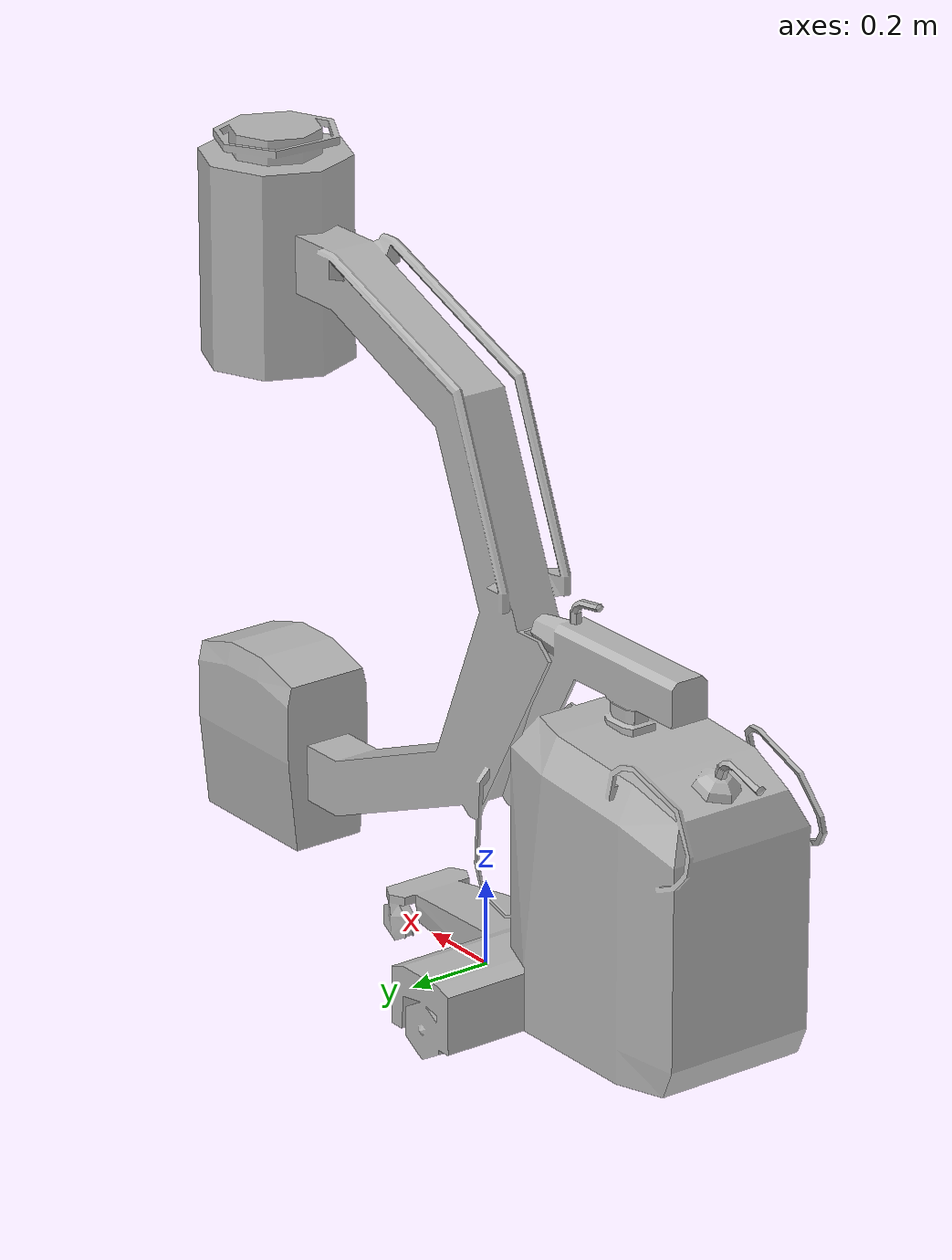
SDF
<?xml version='1.0' encoding='utf-8'?>
<sdf version="1.6">
    <model name="CArm">
        <static>true</static>
        <link name="body">
            <pose>0 0 0 0 0 0</pose>
            <visual name="visual">
                <geometry>
                    <mesh>
                        <uri>https://fuel.ignitionrobotics.org/1.0/OpenRobotics/models/CArm/1/files/meshes/CArm.obj</uri>
                    </mesh>
                </geometry>
            </visual>
            <collision name="collision">
                <geometry>
                    <mesh>
                        <uri>https://fuel.ignitionrobotics.org/1.0/OpenRobotics/models/CArm/1/files/meshes/CArm_Col.obj</uri>
                    </mesh>
                </geometry>
            </collision>
        </link>
    </model>
</sdf>
